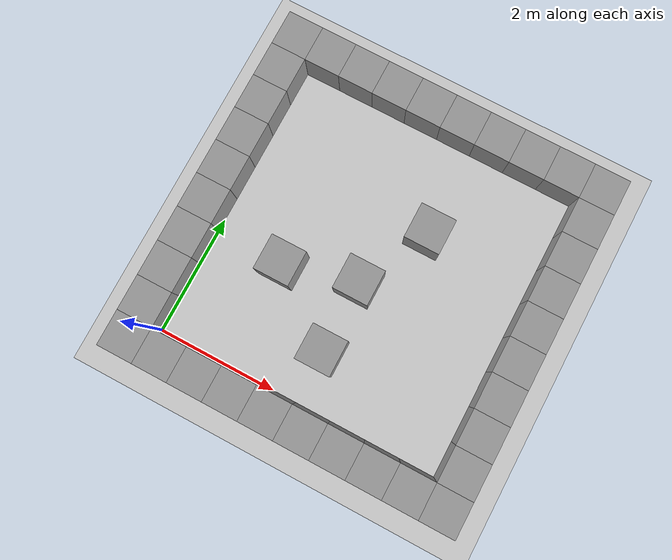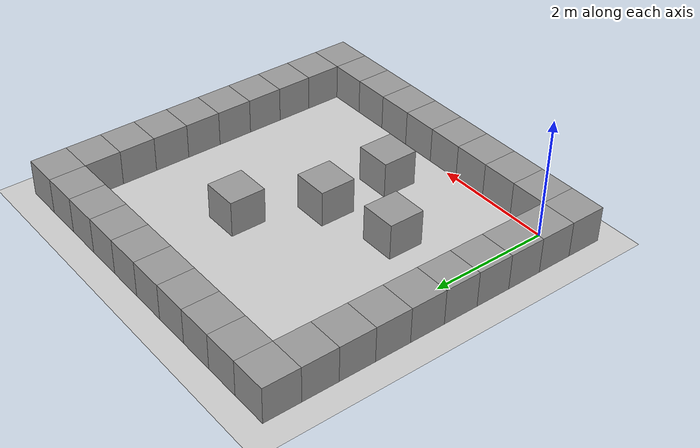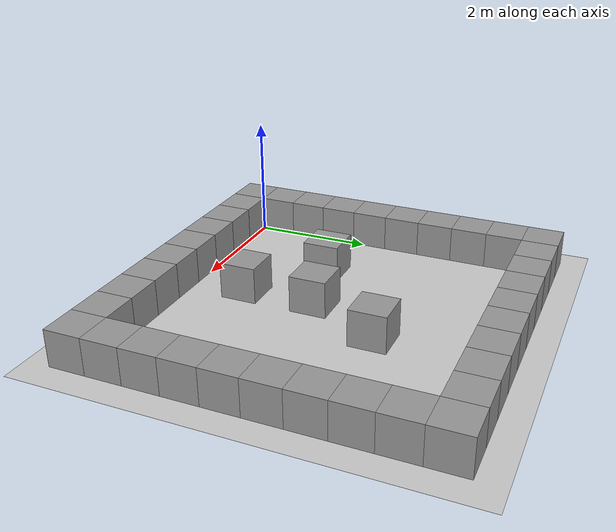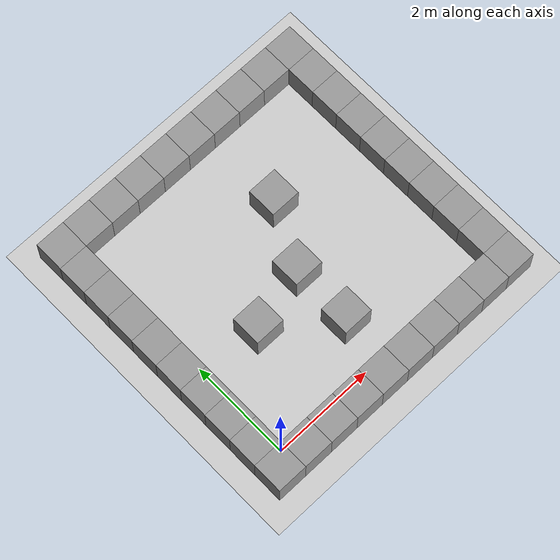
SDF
<sdf version="1.4">
 <world name="default">
  <scene><ambient>0.4 0.4 0.4 1</ambient><shadows>0</shadows></scene>
  <include><uri>model://ground_plane</uri></include>
  <include><uri>model://sun</uri></include>
  <model name="unit_box_id_0">
   <static>true</static>
   <pose>2.4 2.0999999999999996 0.3 0 0 0</pose>
   <link name="link">
    <inertial>
     <mass>1</mass>
     <inertia>
      <ixx>0.166667</ixx>
      <ixy>0</ixy>
      <ixz>0</ixz>
      <iyy>0.166667</iyy>
      <iyz>0</iyz>
      <izz>0.166667</izz>
     </inertia>
     <pose>2.4 2.0999999999999996 0.3 0 0 0</pose>
    </inertial>
    <collision name="collision"><geometry><box><size>0.6 0.6 0.6</size></box></geometry></collision>
    <visual name="visual">
     <geometry><box><size>0.6 0.6 0.6</size></box></geometry>
     <material>
      <script><name>Gazebo/Grey</name><uri>file://media/materials/scripts/gazebo.material</uri></script>
     </material>
    </visual>
   </link>
  </model>
  <model name="unit_box_id_1">
   <static>true</static>
   <pose>1.2 1.8 0.3 0 0 0</pose>
   <link name="link">
    <inertial>
     <mass>1</mass>
     <inertia>
      <ixx>0.166667</ixx>
      <ixy>0</ixy>
      <ixz>0</ixz>
      <iyy>0.166667</iyy>
      <iyz>0</iyz>
      <izz>0.166667</izz>
     </inertia>
     <pose>1.2 1.8 0.3 0 0 0</pose>
    </inertial>
    <collision name="collision"><geometry><box><size>0.6 0.6 0.6</size></box></geometry></collision>
    <visual name="visual">
     <geometry><box><size>0.6 0.6 0.6</size></box></geometry>
     <material>
      <script><name>Gazebo/Grey</name><uri>file://media/materials/scripts/gazebo.material</uri></script>
     </material>
    </visual>
   </link>
  </model>
  <model name="unit_box_id_2">
   <static>true</static>
   <pose>2.4 0.8999999999999999 0.3 0 0 0</pose>
   <link name="link">
    <inertial>
     <mass>1</mass>
     <inertia>
      <ixx>0.166667</ixx>
      <ixy>0</ixy>
      <ixz>0</ixz>
      <iyy>0.166667</iyy>
      <iyz>0</iyz>
      <izz>0.166667</izz>
     </inertia>
     <pose>2.4 0.8999999999999999 0.3 0 0 0</pose>
    </inertial>
    <collision name="collision"><geometry><box><size>0.6 0.6 0.6</size></box></geometry></collision>
    <visual name="visual">
     <geometry><box><size>0.6 0.6 0.6</size></box></geometry>
     <material>
      <script><name>Gazebo/Grey</name><uri>file://media/materials/scripts/gazebo.material</uri></script>
     </material>
    </visual>
   </link>
  </model>
  <model name="unit_box_id_3">
   <static>true</static>
   <pose>2.9999999999999996 3.3 0.3 0 0 0</pose>
   <link name="link">
    <inertial>
     <mass>1</mass>
     <inertia>
      <ixx>0.166667</ixx>
      <ixy>0</ixy>
      <ixz>0</ixz>
      <iyy>0.166667</iyy>
      <iyz>0</iyz>
      <izz>0.166667</izz>
     </inertia>
     <pose>2.9999999999999996 3.3 0.3 0 0 0</pose>
    </inertial>
    <collision name="collision"><geometry><box><size>0.6 0.6 0.6</size></box></geometry></collision>
    <visual name="visual">
     <geometry><box><size>0.6 0.6 0.6</size></box></geometry>
     <material>
      <script><name>Gazebo/Grey</name><uri>file://media/materials/scripts/gazebo.material</uri></script>
     </material>
    </visual>
   </link>
  </model>
  <model name="unit_box_id_-0.6_-0.6">
   <static>true</static>
   <pose>-0.3 -0.3 0.3 0 0 0</pose>
   <link name="link">
    <inertial>
     <mass>1</mass>
     <inertia>
      <ixx>0.166667</ixx>
      <ixy>0</ixy>
      <ixz>0</ixz>
      <iyy>0.166667</iyy>
      <iyz>0</iyz>
      <izz>0.166667</izz>
     </inertia>
     <pose>-0.3 -0.3 0.3 0 0 0</pose>
    </inertial>
    <collision name="collision"><geometry><box><size>0.6 0.6 0.6</size></box></geometry></collision>
    <visual name="visual">
     <geometry><box><size>0.6 0.6 0.6</size></box></geometry>
     <material>
      <script><name>Gazebo/Grey</name><uri>file://media/materials/scripts/gazebo.material</uri></script>
     </material>
    </visual>
   </link>
  </model>
  <model name="unit_box_id_4.8_-0.6">
   <static>true</static>
   <pose>5.1 -0.3 0.3 0 0 0</pose>
   <link name="link">
    <inertial>
     <mass>1</mass>
     <inertia>
      <ixx>0.166667</ixx>
      <ixy>0</ixy>
      <ixz>0</ixz>
      <iyy>0.166667</iyy>
      <iyz>0</iyz>
      <izz>0.166667</izz>
     </inertia>
     <pose>5.1 -0.3 0.3 0 0 0</pose>
    </inertial>
    <collision name="collision"><geometry><box><size>0.6 0.6 0.6</size></box></geometry></collision>
    <visual name="visual">
     <geometry><box><size>0.6 0.6 0.6</size></box></geometry>
     <material>
      <script><name>Gazebo/Grey</name><uri>file://media/materials/scripts/gazebo.material</uri></script>
     </material>
    </visual>
   </link>
  </model>
  <model name="unit_box_id_-0.6_0.0">
   <static>true</static>
   <pose>-0.3 0.3 0.3 0 0 0</pose>
   <link name="link">
    <inertial>
     <mass>1</mass>
     <inertia>
      <ixx>0.166667</ixx>
      <ixy>0</ixy>
      <ixz>0</ixz>
      <iyy>0.166667</iyy>
      <iyz>0</iyz>
      <izz>0.166667</izz>
     </inertia>
     <pose>-0.3 0.3 0.3 0 0 0</pose>
    </inertial>
    <collision name="collision"><geometry><box><size>0.6 0.6 0.6</size></box></geometry></collision>
    <visual name="visual">
     <geometry><box><size>0.6 0.6 0.6</size></box></geometry>
     <material>
      <script><name>Gazebo/Grey</name><uri>file://media/materials/scripts/gazebo.material</uri></script>
     </material>
    </visual>
   </link>
  </model>
  <model name="unit_box_id_4.8_0.0">
   <static>true</static>
   <pose>5.1 0.3 0.3 0 0 0</pose>
   <link name="link">
    <inertial>
     <mass>1</mass>
     <inertia>
      <ixx>0.166667</ixx>
      <ixy>0</ixy>
      <ixz>0</ixz>
      <iyy>0.166667</iyy>
      <iyz>0</iyz>
      <izz>0.166667</izz>
     </inertia>
     <pose>5.1 0.3 0.3 0 0 0</pose>
    </inertial>
    <collision name="collision"><geometry><box><size>0.6 0.6 0.6</size></box></geometry></collision>
    <visual name="visual">
     <geometry><box><size>0.6 0.6 0.6</size></box></geometry>
     <material>
      <script><name>Gazebo/Grey</name><uri>file://media/materials/scripts/gazebo.material</uri></script>
     </material>
    </visual>
   </link>
  </model>
  <model name="unit_box_id_-0.6_0.6">
   <static>true</static>
   <pose>-0.3 0.8999999999999999 0.3 0 0 0</pose>
   <link name="link">
    <inertial>
     <mass>1</mass>
     <inertia>
      <ixx>0.166667</ixx>
      <ixy>0</ixy>
      <ixz>0</ixz>
      <iyy>0.166667</iyy>
      <iyz>0</iyz>
      <izz>0.166667</izz>
     </inertia>
     <pose>-0.3 0.8999999999999999 0.3 0 0 0</pose>
    </inertial>
    <collision name="collision"><geometry><box><size>0.6 0.6 0.6</size></box></geometry></collision>
    <visual name="visual">
     <geometry><box><size>0.6 0.6 0.6</size></box></geometry>
     <material>
      <script><name>Gazebo/Grey</name><uri>file://media/materials/scripts/gazebo.material</uri></script>
     </material>
    </visual>
   </link>
  </model>
  <model name="unit_box_id_4.8_0.6">
   <static>true</static>
   <pose>5.1 0.8999999999999999 0.3 0 0 0</pose>
   <link name="link">
    <inertial>
     <mass>1</mass>
     <inertia>
      <ixx>0.166667</ixx>
      <ixy>0</ixy>
      <ixz>0</ixz>
      <iyy>0.166667</iyy>
      <iyz>0</iyz>
      <izz>0.166667</izz>
     </inertia>
     <pose>5.1 0.8999999999999999 0.3 0 0 0</pose>
    </inertial>
    <collision name="collision"><geometry><box><size>0.6 0.6 0.6</size></box></geometry></collision>
    <visual name="visual">
     <geometry><box><size>0.6 0.6 0.6</size></box></geometry>
     <material>
      <script><name>Gazebo/Grey</name><uri>file://media/materials/scripts/gazebo.material</uri></script>
     </material>
    </visual>
   </link>
  </model>
  <model name="unit_box_id_-0.6_1.2">
   <static>true</static>
   <pose>-0.3 1.5 0.3 0 0 0</pose>
   <link name="link">
    <inertial>
     <mass>1</mass>
     <inertia>
      <ixx>0.166667</ixx>
      <ixy>0</ixy>
      <ixz>0</ixz>
      <iyy>0.166667</iyy>
      <iyz>0</iyz>
      <izz>0.166667</izz>
     </inertia>
     <pose>-0.3 1.5 0.3 0 0 0</pose>
    </inertial>
    <collision name="collision"><geometry><box><size>0.6 0.6 0.6</size></box></geometry></collision>
    <visual name="visual">
     <geometry><box><size>0.6 0.6 0.6</size></box></geometry>
     <material>
      <script><name>Gazebo/Grey</name><uri>file://media/materials/scripts/gazebo.material</uri></script>
     </material>
    </visual>
   </link>
  </model>
  <model name="unit_box_id_4.8_1.2">
   <static>true</static>
   <pose>5.1 1.5 0.3 0 0 0</pose>
   <link name="link">
    <inertial>
     <mass>1</mass>
     <inertia>
      <ixx>0.166667</ixx>
      <ixy>0</ixy>
      <ixz>0</ixz>
      <iyy>0.166667</iyy>
      <iyz>0</iyz>
      <izz>0.166667</izz>
     </inertia>
     <pose>5.1 1.5 0.3 0 0 0</pose>
    </inertial>
    <collision name="collision"><geometry><box><size>0.6 0.6 0.6</size></box></geometry></collision>
    <visual name="visual">
     <geometry><box><size>0.6 0.6 0.6</size></box></geometry>
     <material>
      <script><name>Gazebo/Grey</name><uri>file://media/materials/scripts/gazebo.material</uri></script>
     </material>
    </visual>
   </link>
  </model>
  <model name="unit_box_id_-0.6_1.7999999999999998">
   <static>true</static>
   <pose>-0.3 2.0999999999999996 0.3 0 0 0</pose>
   <link name="link">
    <inertial>
     <mass>1</mass>
     <inertia>
      <ixx>0.166667</ixx>
      <ixy>0</ixy>
      <ixz>0</ixz>
      <iyy>0.166667</iyy>
      <iyz>0</iyz>
      <izz>0.166667</izz>
     </inertia>
     <pose>-0.3 2.0999999999999996 0.3 0 0 0</pose>
    </inertial>
    <collision name="collision"><geometry><box><size>0.6 0.6 0.6</size></box></geometry></collision>
    <visual name="visual">
     <geometry><box><size>0.6 0.6 0.6</size></box></geometry>
     <material>
      <script><name>Gazebo/Grey</name><uri>file://media/materials/scripts/gazebo.material</uri></script>
     </material>
    </visual>
   </link>
  </model>
  <model name="unit_box_id_4.8_1.7999999999999998">
   <static>true</static>
   <pose>5.1 2.0999999999999996 0.3 0 0 0</pose>
   <link name="link">
    <inertial>
     <mass>1</mass>
     <inertia>
      <ixx>0.166667</ixx>
      <ixy>0</ixy>
      <ixz>0</ixz>
      <iyy>0.166667</iyy>
      <iyz>0</iyz>
      <izz>0.166667</izz>
     </inertia>
     <pose>5.1 2.0999999999999996 0.3 0 0 0</pose>
    </inertial>
    <collision name="collision"><geometry><box><size>0.6 0.6 0.6</size></box></geometry></collision>
    <visual name="visual">
     <geometry><box><size>0.6 0.6 0.6</size></box></geometry>
     <material>
      <script><name>Gazebo/Grey</name><uri>file://media/materials/scripts/gazebo.material</uri></script>
     </material>
    </visual>
   </link>
  </model>
  <model name="unit_box_id_-0.6_2.4">
   <static>true</static>
   <pose>-0.3 2.6999999999999997 0.3 0 0 0</pose>
   <link name="link">
    <inertial>
     <mass>1</mass>
     <inertia>
      <ixx>0.166667</ixx>
      <ixy>0</ixy>
      <ixz>0</ixz>
      <iyy>0.166667</iyy>
      <iyz>0</iyz>
      <izz>0.166667</izz>
     </inertia>
     <pose>-0.3 2.6999999999999997 0.3 0 0 0</pose>
    </inertial>
    <collision name="collision"><geometry><box><size>0.6 0.6 0.6</size></box></geometry></collision>
    <visual name="visual">
     <geometry><box><size>0.6 0.6 0.6</size></box></geometry>
     <material>
      <script><name>Gazebo/Grey</name><uri>file://media/materials/scripts/gazebo.material</uri></script>
     </material>
    </visual>
   </link>
  </model>
  <model name="unit_box_id_4.8_2.4">
   <static>true</static>
   <pose>5.1 2.6999999999999997 0.3 0 0 0</pose>
   <link name="link">
    <inertial>
     <mass>1</mass>
     <inertia>
      <ixx>0.166667</ixx>
      <ixy>0</ixy>
      <ixz>0</ixz>
      <iyy>0.166667</iyy>
      <iyz>0</iyz>
      <izz>0.166667</izz>
     </inertia>
     <pose>5.1 2.6999999999999997 0.3 0 0 0</pose>
    </inertial>
    <collision name="collision"><geometry><box><size>0.6 0.6 0.6</size></box></geometry></collision>
    <visual name="visual">
     <geometry><box><size>0.6 0.6 0.6</size></box></geometry>
     <material>
      <script><name>Gazebo/Grey</name><uri>file://media/materials/scripts/gazebo.material</uri></script>
     </material>
    </visual>
   </link>
  </model>
  <model name="unit_box_id_-0.6_3.0">
   <static>true</static>
   <pose>-0.3 3.3 0.3 0 0 0</pose>
   <link name="link">
    <inertial>
     <mass>1</mass>
     <inertia>
      <ixx>0.166667</ixx>
      <ixy>0</ixy>
      <ixz>0</ixz>
      <iyy>0.166667</iyy>
      <iyz>0</iyz>
      <izz>0.166667</izz>
     </inertia>
     <pose>-0.3 3.3 0.3 0 0 0</pose>
    </inertial>
    <collision name="collision"><geometry><box><size>0.6 0.6 0.6</size></box></geometry></collision>
    <visual name="visual">
     <geometry><box><size>0.6 0.6 0.6</size></box></geometry>
     <material>
      <script><name>Gazebo/Grey</name><uri>file://media/materials/scripts/gazebo.material</uri></script>
     </material>
    </visual>
   </link>
  </model>
  <model name="unit_box_id_4.8_3.0">
   <static>true</static>
   <pose>5.1 3.3 0.3 0 0 0</pose>
   <link name="link">
    <inertial>
     <mass>1</mass>
     <inertia>
      <ixx>0.166667</ixx>
      <ixy>0</ixy>
      <ixz>0</ixz>
      <iyy>0.166667</iyy>
      <iyz>0</iyz>
      <izz>0.166667</izz>
     </inertia>
     <pose>5.1 3.3 0.3 0 0 0</pose>
    </inertial>
    <collision name="collision"><geometry><box><size>0.6 0.6 0.6</size></box></geometry></collision>
    <visual name="visual">
     <geometry><box><size>0.6 0.6 0.6</size></box></geometry>
     <material>
      <script><name>Gazebo/Grey</name><uri>file://media/materials/scripts/gazebo.material</uri></script>
     </material>
    </visual>
   </link>
  </model>
  <model name="unit_box_id_-0.6_3.5999999999999996">
   <static>true</static>
   <pose>-0.3 3.8999999999999995 0.3 0 0 0</pose>
   <link name="link">
    <inertial>
     <mass>1</mass>
     <inertia>
      <ixx>0.166667</ixx>
      <ixy>0</ixy>
      <ixz>0</ixz>
      <iyy>0.166667</iyy>
      <iyz>0</iyz>
      <izz>0.166667</izz>
     </inertia>
     <pose>-0.3 3.8999999999999995 0.3 0 0 0</pose>
    </inertial>
    <collision name="collision"><geometry><box><size>0.6 0.6 0.6</size></box></geometry></collision>
    <visual name="visual">
     <geometry><box><size>0.6 0.6 0.6</size></box></geometry>
     <material>
      <script><name>Gazebo/Grey</name><uri>file://media/materials/scripts/gazebo.material</uri></script>
     </material>
    </visual>
   </link>
  </model>
  <model name="unit_box_id_4.8_3.5999999999999996">
   <static>true</static>
   <pose>5.1 3.8999999999999995 0.3 0 0 0</pose>
   <link name="link">
    <inertial>
     <mass>1</mass>
     <inertia>
      <ixx>0.166667</ixx>
      <ixy>0</ixy>
      <ixz>0</ixz>
      <iyy>0.166667</iyy>
      <iyz>0</iyz>
      <izz>0.166667</izz>
     </inertia>
     <pose>5.1 3.8999999999999995 0.3 0 0 0</pose>
    </inertial>
    <collision name="collision"><geometry><box><size>0.6 0.6 0.6</size></box></geometry></collision>
    <visual name="visual">
     <geometry><box><size>0.6 0.6 0.6</size></box></geometry>
     <material>
      <script><name>Gazebo/Grey</name><uri>file://media/materials/scripts/gazebo.material</uri></script>
     </material>
    </visual>
   </link>
  </model>
  <model name="unit_box_id_-0.6_4.2">
   <static>true</static>
   <pose>-0.3 4.5 0.3 0 0 0</pose>
   <link name="link">
    <inertial>
     <mass>1</mass>
     <inertia>
      <ixx>0.166667</ixx>
      <ixy>0</ixy>
      <ixz>0</ixz>
      <iyy>0.166667</iyy>
      <iyz>0</iyz>
      <izz>0.166667</izz>
     </inertia>
     <pose>-0.3 4.5 0.3 0 0 0</pose>
    </inertial>
    <collision name="collision"><geometry><box><size>0.6 0.6 0.6</size></box></geometry></collision>
    <visual name="visual">
     <geometry><box><size>0.6 0.6 0.6</size></box></geometry>
     <material>
      <script><name>Gazebo/Grey</name><uri>file://media/materials/scripts/gazebo.material</uri></script>
     </material>
    </visual>
   </link>
  </model>
  <model name="unit_box_id_4.8_4.2">
   <static>true</static>
   <pose>5.1 4.5 0.3 0 0 0</pose>
   <link name="link">
    <inertial>
     <mass>1</mass>
     <inertia>
      <ixx>0.166667</ixx>
      <ixy>0</ixy>
      <ixz>0</ixz>
      <iyy>0.166667</iyy>
      <iyz>0</iyz>
      <izz>0.166667</izz>
     </inertia>
     <pose>5.1 4.5 0.3 0 0 0</pose>
    </inertial>
    <collision name="collision"><geometry><box><size>0.6 0.6 0.6</size></box></geometry></collision>
    <visual name="visual">
     <geometry><box><size>0.6 0.6 0.6</size></box></geometry>
     <material>
      <script><name>Gazebo/Grey</name><uri>file://media/materials/scripts/gazebo.material</uri></script>
     </material>
    </visual>
   </link>
  </model>
  <model name="unit_box_id_-0.6_4.8">
   <static>true</static>
   <pose>-0.3 5.1 0.3 0 0 0</pose>
   <link name="link">
    <inertial>
     <mass>1</mass>
     <inertia>
      <ixx>0.166667</ixx>
      <ixy>0</ixy>
      <ixz>0</ixz>
      <iyy>0.166667</iyy>
      <iyz>0</iyz>
      <izz>0.166667</izz>
     </inertia>
     <pose>-0.3 5.1 0.3 0 0 0</pose>
    </inertial>
    <collision name="collision"><geometry><box><size>0.6 0.6 0.6</size></box></geometry></collision>
    <visual name="visual">
     <geometry><box><size>0.6 0.6 0.6</size></box></geometry>
     <material>
      <script><name>Gazebo/Grey</name><uri>file://media/materials/scripts/gazebo.material</uri></script>
     </material>
    </visual>
   </link>
  </model>
  <model name="unit_box_id_4.8_4.8">
   <static>true</static>
   <pose>5.1 5.1 0.3 0 0 0</pose>
   <link name="link">
    <inertial>
     <mass>1</mass>
     <inertia>
      <ixx>0.166667</ixx>
      <ixy>0</ixy>
      <ixz>0</ixz>
      <iyy>0.166667</iyy>
      <iyz>0</iyz>
      <izz>0.166667</izz>
     </inertia>
     <pose>5.1 5.1 0.3 0 0 0</pose>
    </inertial>
    <collision name="collision"><geometry><box><size>0.6 0.6 0.6</size></box></geometry></collision>
    <visual name="visual">
     <geometry><box><size>0.6 0.6 0.6</size></box></geometry>
     <material>
      <script><name>Gazebo/Grey</name><uri>file://media/materials/scripts/gazebo.material</uri></script>
     </material>
    </visual>
   </link>
  </model>
  <model name="unit_box_id_-0.6_-0.6">
   <static>true</static>
   <pose>-0.3 -0.3 0.3 0 0 0</pose>
   <link name="link">
    <inertial>
     <mass>1</mass>
     <inertia>
      <ixx>0.166667</ixx>
      <ixy>0</ixy>
      <ixz>0</ixz>
      <iyy>0.166667</iyy>
      <iyz>0</iyz>
      <izz>0.166667</izz>
     </inertia>
     <pose>-0.3 -0.3 0.3 0 0 0</pose>
    </inertial>
    <collision name="collision"><geometry><box><size>0.6 0.6 0.6</size></box></geometry></collision>
    <visual name="visual">
     <geometry><box><size>0.6 0.6 0.6</size></box></geometry>
     <material>
      <script><name>Gazebo/Grey</name><uri>file://media/materials/scripts/gazebo.material</uri></script>
     </material>
    </visual>
   </link>
  </model>
  <model name="unit_box_id_-0.6_4.8">
   <static>true</static>
   <pose>-0.3 5.1 0.3 0 0 0</pose>
   <link name="link">
    <inertial>
     <mass>1</mass>
     <inertia>
      <ixx>0.166667</ixx>
      <ixy>0</ixy>
      <ixz>0</ixz>
      <iyy>0.166667</iyy>
      <iyz>0</iyz>
      <izz>0.166667</izz>
     </inertia>
     <pose>-0.3 5.1 0.3 0 0 0</pose>
    </inertial>
    <collision name="collision"><geometry><box><size>0.6 0.6 0.6</size></box></geometry></collision>
    <visual name="visual">
     <geometry><box><size>0.6 0.6 0.6</size></box></geometry>
     <material>
      <script><name>Gazebo/Grey</name><uri>file://media/materials/scripts/gazebo.material</uri></script>
     </material>
    </visual>
   </link>
  </model>
  <model name="unit_box_id_0.0_-0.6">
   <static>true</static>
   <pose>0.3 -0.3 0.3 0 0 0</pose>
   <link name="link">
    <inertial>
     <mass>1</mass>
     <inertia>
      <ixx>0.166667</ixx>
      <ixy>0</ixy>
      <ixz>0</ixz>
      <iyy>0.166667</iyy>
      <iyz>0</iyz>
      <izz>0.166667</izz>
     </inertia>
     <pose>0.3 -0.3 0.3 0 0 0</pose>
    </inertial>
    <collision name="collision"><geometry><box><size>0.6 0.6 0.6</size></box></geometry></collision>
    <visual name="visual">
     <geometry><box><size>0.6 0.6 0.6</size></box></geometry>
     <material>
      <script><name>Gazebo/Grey</name><uri>file://media/materials/scripts/gazebo.material</uri></script>
     </material>
    </visual>
   </link>
  </model>
  <model name="unit_box_id_0.0_4.8">
   <static>true</static>
   <pose>0.3 5.1 0.3 0 0 0</pose>
   <link name="link">
    <inertial>
     <mass>1</mass>
     <inertia>
      <ixx>0.166667</ixx>
      <ixy>0</ixy>
      <ixz>0</ixz>
      <iyy>0.166667</iyy>
      <iyz>0</iyz>
      <izz>0.166667</izz>
     </inertia>
     <pose>0.3 5.1 0.3 0 0 0</pose>
    </inertial>
    <collision name="collision"><geometry><box><size>0.6 0.6 0.6</size></box></geometry></collision>
    <visual name="visual">
     <geometry><box><size>0.6 0.6 0.6</size></box></geometry>
     <material>
      <script><name>Gazebo/Grey</name><uri>file://media/materials/scripts/gazebo.material</uri></script>
     </material>
    </visual>
   </link>
  </model>
  <model name="unit_box_id_0.6_-0.6">
   <static>true</static>
   <pose>0.8999999999999999 -0.3 0.3 0 0 0</pose>
   <link name="link">
    <inertial>
     <mass>1</mass>
     <inertia>
      <ixx>0.166667</ixx>
      <ixy>0</ixy>
      <ixz>0</ixz>
      <iyy>0.166667</iyy>
      <iyz>0</iyz>
      <izz>0.166667</izz>
     </inertia>
     <pose>0.8999999999999999 -0.3 0.3 0 0 0</pose>
    </inertial>
    <collision name="collision"><geometry><box><size>0.6 0.6 0.6</size></box></geometry></collision>
    <visual name="visual">
     <geometry><box><size>0.6 0.6 0.6</size></box></geometry>
     <material>
      <script><name>Gazebo/Grey</name><uri>file://media/materials/scripts/gazebo.material</uri></script>
     </material>
    </visual>
   </link>
  </model>
  <model name="unit_box_id_0.6_4.8">
   <static>true</static>
   <pose>0.8999999999999999 5.1 0.3 0 0 0</pose>
   <link name="link">
    <inertial>
     <mass>1</mass>
     <inertia>
      <ixx>0.166667</ixx>
      <ixy>0</ixy>
      <ixz>0</ixz>
      <iyy>0.166667</iyy>
      <iyz>0</iyz>
      <izz>0.166667</izz>
     </inertia>
     <pose>0.8999999999999999 5.1 0.3 0 0 0</pose>
    </inertial>
    <collision name="collision"><geometry><box><size>0.6 0.6 0.6</size></box></geometry></collision>
    <visual name="visual">
     <geometry><box><size>0.6 0.6 0.6</size></box></geometry>
     <material>
      <script><name>Gazebo/Grey</name><uri>file://media/materials/scripts/gazebo.material</uri></script>
     </material>
    </visual>
   </link>
  </model>
  <model name="unit_box_id_1.2_-0.6">
   <static>true</static>
   <pose>1.5 -0.3 0.3 0 0 0</pose>
   <link name="link">
    <inertial>
     <mass>1</mass>
     <inertia>
      <ixx>0.166667</ixx>
      <ixy>0</ixy>
      <ixz>0</ixz>
      <iyy>0.166667</iyy>
      <iyz>0</iyz>
      <izz>0.166667</izz>
     </inertia>
     <pose>1.5 -0.3 0.3 0 0 0</pose>
    </inertial>
    <collision name="collision"><geometry><box><size>0.6 0.6 0.6</size></box></geometry></collision>
    <visual name="visual">
     <geometry><box><size>0.6 0.6 0.6</size></box></geometry>
     <material>
      <script><name>Gazebo/Grey</name><uri>file://media/materials/scripts/gazebo.material</uri></script>
     </material>
    </visual>
   </link>
  </model>
  <model name="unit_box_id_1.2_4.8">
   <static>true</static>
   <pose>1.5 5.1 0.3 0 0 0</pose>
   <link name="link">
    <inertial>
     <mass>1</mass>
     <inertia>
      <ixx>0.166667</ixx>
      <ixy>0</ixy>
      <ixz>0</ixz>
      <iyy>0.166667</iyy>
      <iyz>0</iyz>
      <izz>0.166667</izz>
     </inertia>
     <pose>1.5 5.1 0.3 0 0 0</pose>
    </inertial>
    <collision name="collision"><geometry><box><size>0.6 0.6 0.6</size></box></geometry></collision>
    <visual name="visual">
     <geometry><box><size>0.6 0.6 0.6</size></box></geometry>
     <material>
      <script><name>Gazebo/Grey</name><uri>file://media/materials/scripts/gazebo.material</uri></script>
     </material>
    </visual>
   </link>
  </model>
  <model name="unit_box_id_1.7999999999999998_-0.6">
   <static>true</static>
   <pose>2.0999999999999996 -0.3 0.3 0 0 0</pose>
   <link name="link">
    <inertial>
     <mass>1</mass>
     <inertia>
      <ixx>0.166667</ixx>
      <ixy>0</ixy>
      <ixz>0</ixz>
      <iyy>0.166667</iyy>
      <iyz>0</iyz>
      <izz>0.166667</izz>
     </inertia>
     <pose>2.0999999999999996 -0.3 0.3 0 0 0</pose>
    </inertial>
    <collision name="collision"><geometry><box><size>0.6 0.6 0.6</size></box></geometry></collision>
    <visual name="visual">
     <geometry><box><size>0.6 0.6 0.6</size></box></geometry>
     <material>
      <script><name>Gazebo/Grey</name><uri>file://media/materials/scripts/gazebo.material</uri></script>
     </material>
    </visual>
   </link>
  </model>
  <model name="unit_box_id_1.7999999999999998_4.8">
   <static>true</static>
   <pose>2.0999999999999996 5.1 0.3 0 0 0</pose>
   <link name="link">
    <inertial>
     <mass>1</mass>
     <inertia>
      <ixx>0.166667</ixx>
      <ixy>0</ixy>
      <ixz>0</ixz>
      <iyy>0.166667</iyy>
      <iyz>0</iyz>
      <izz>0.166667</izz>
     </inertia>
     <pose>2.0999999999999996 5.1 0.3 0 0 0</pose>
    </inertial>
    <collision name="collision"><geometry><box><size>0.6 0.6 0.6</size></box></geometry></collision>
    <visual name="visual">
     <geometry><box><size>0.6 0.6 0.6</size></box></geometry>
     <material>
      <script><name>Gazebo/Grey</name><uri>file://media/materials/scripts/gazebo.material</uri></script>
     </material>
    </visual>
   </link>
  </model>
  <model name="unit_box_id_2.4_-0.6">
   <static>true</static>
   <pose>2.6999999999999997 -0.3 0.3 0 0 0</pose>
   <link name="link">
    <inertial>
     <mass>1</mass>
     <inertia>
      <ixx>0.166667</ixx>
      <ixy>0</ixy>
      <ixz>0</ixz>
      <iyy>0.166667</iyy>
      <iyz>0</iyz>
      <izz>0.166667</izz>
     </inertia>
     <pose>2.6999999999999997 -0.3 0.3 0 0 0</pose>
    </inertial>
    <collision name="collision"><geometry><box><size>0.6 0.6 0.6</size></box></geometry></collision>
    <visual name="visual">
     <geometry><box><size>0.6 0.6 0.6</size></box></geometry>
     <material>
      <script><name>Gazebo/Grey</name><uri>file://media/materials/scripts/gazebo.material</uri></script>
     </material>
    </visual>
   </link>
  </model>
  <model name="unit_box_id_2.4_4.8">
   <static>true</static>
   <pose>2.6999999999999997 5.1 0.3 0 0 0</pose>
   <link name="link">
    <inertial>
     <mass>1</mass>
     <inertia>
      <ixx>0.166667</ixx>
      <ixy>0</ixy>
      <ixz>0</ixz>
      <iyy>0.166667</iyy>
      <iyz>0</iyz>
      <izz>0.166667</izz>
     </inertia>
     <pose>2.6999999999999997 5.1 0.3 0 0 0</pose>
    </inertial>
    <collision name="collision"><geometry><box><size>0.6 0.6 0.6</size></box></geometry></collision>
    <visual name="visual">
     <geometry><box><size>0.6 0.6 0.6</size></box></geometry>
     <material>
      <script><name>Gazebo/Grey</name><uri>file://media/materials/scripts/gazebo.material</uri></script>
     </material>
    </visual>
   </link>
  </model>
  <model name="unit_box_id_3.0_-0.6">
   <static>true</static>
   <pose>3.3 -0.3 0.3 0 0 0</pose>
   <link name="link">
    <inertial>
     <mass>1</mass>
     <inertia>
      <ixx>0.166667</ixx>
      <ixy>0</ixy>
      <ixz>0</ixz>
      <iyy>0.166667</iyy>
      <iyz>0</iyz>
      <izz>0.166667</izz>
     </inertia>
     <pose>3.3 -0.3 0.3 0 0 0</pose>
    </inertial>
    <collision name="collision"><geometry><box><size>0.6 0.6 0.6</size></box></geometry></collision>
    <visual name="visual">
     <geometry><box><size>0.6 0.6 0.6</size></box></geometry>
     <material>
      <script><name>Gazebo/Grey</name><uri>file://media/materials/scripts/gazebo.material</uri></script>
     </material>
    </visual>
   </link>
  </model>
  <model name="unit_box_id_3.0_4.8">
   <static>true</static>
   <pose>3.3 5.1 0.3 0 0 0</pose>
   <link name="link">
    <inertial>
     <mass>1</mass>
     <inertia>
      <ixx>0.166667</ixx>
      <ixy>0</ixy>
      <ixz>0</ixz>
      <iyy>0.166667</iyy>
      <iyz>0</iyz>
      <izz>0.166667</izz>
     </inertia>
     <pose>3.3 5.1 0.3 0 0 0</pose>
    </inertial>
    <collision name="collision"><geometry><box><size>0.6 0.6 0.6</size></box></geometry></collision>
    <visual name="visual">
     <geometry><box><size>0.6 0.6 0.6</size></box></geometry>
     <material>
      <script><name>Gazebo/Grey</name><uri>file://media/materials/scripts/gazebo.material</uri></script>
     </material>
    </visual>
   </link>
  </model>
  <model name="unit_box_id_3.5999999999999996_-0.6">
   <static>true</static>
   <pose>3.8999999999999995 -0.3 0.3 0 0 0</pose>
   <link name="link">
    <inertial>
     <mass>1</mass>
     <inertia>
      <ixx>0.166667</ixx>
      <ixy>0</ixy>
      <ixz>0</ixz>
      <iyy>0.166667</iyy>
      <iyz>0</iyz>
      <izz>0.166667</izz>
     </inertia>
     <pose>3.8999999999999995 -0.3 0.3 0 0 0</pose>
    </inertial>
    <collision name="collision"><geometry><box><size>0.6 0.6 0.6</size></box></geometry></collision>
    <visual name="visual">
     <geometry><box><size>0.6 0.6 0.6</size></box></geometry>
     <material>
      <script><name>Gazebo/Grey</name><uri>file://media/materials/scripts/gazebo.material</uri></script>
     </material>
    </visual>
   </link>
  </model>
  <model name="unit_box_id_3.5999999999999996_4.8">
   <static>true</static>
   <pose>3.8999999999999995 5.1 0.3 0 0 0</pose>
   <link name="link">
    <inertial>
     <mass>1</mass>
     <inertia>
      <ixx>0.166667</ixx>
      <ixy>0</ixy>
      <ixz>0</ixz>
      <iyy>0.166667</iyy>
      <iyz>0</iyz>
      <izz>0.166667</izz>
     </inertia>
     <pose>3.8999999999999995 5.1 0.3 0 0 0</pose>
    </inertial>
    <collision name="collision"><geometry><box><size>0.6 0.6 0.6</size></box></geometry></collision>
    <visual name="visual">
     <geometry><box><size>0.6 0.6 0.6</size></box></geometry>
     <material>
      <script><name>Gazebo/Grey</name><uri>file://media/materials/scripts/gazebo.material</uri></script>
     </material>
    </visual>
   </link>
  </model>
  <model name="unit_box_id_4.2_-0.6">
   <static>true</static>
   <pose>4.5 -0.3 0.3 0 0 0</pose>
   <link name="link">
    <inertial>
     <mass>1</mass>
     <inertia>
      <ixx>0.166667</ixx>
      <ixy>0</ixy>
      <ixz>0</ixz>
      <iyy>0.166667</iyy>
      <iyz>0</iyz>
      <izz>0.166667</izz>
     </inertia>
     <pose>4.5 -0.3 0.3 0 0 0</pose>
    </inertial>
    <collision name="collision"><geometry><box><size>0.6 0.6 0.6</size></box></geometry></collision>
    <visual name="visual">
     <geometry><box><size>0.6 0.6 0.6</size></box></geometry>
     <material>
      <script><name>Gazebo/Grey</name><uri>file://media/materials/scripts/gazebo.material</uri></script>
     </material>
    </visual>
   </link>
  </model>
  <model name="unit_box_id_4.2_4.8">
   <static>true</static>
   <pose>4.5 5.1 0.3 0 0 0</pose>
   <link name="link">
    <inertial>
     <mass>1</mass>
     <inertia>
      <ixx>0.166667</ixx>
      <ixy>0</ixy>
      <ixz>0</ixz>
      <iyy>0.166667</iyy>
      <iyz>0</iyz>
      <izz>0.166667</izz>
     </inertia>
     <pose>4.5 5.1 0.3 0 0 0</pose>
    </inertial>
    <collision name="collision"><geometry><box><size>0.6 0.6 0.6</size></box></geometry></collision>
    <visual name="visual">
     <geometry><box><size>0.6 0.6 0.6</size></box></geometry>
     <material>
      <script><name>Gazebo/Grey</name><uri>file://media/materials/scripts/gazebo.material</uri></script>
     </material>
    </visual>
   </link>
  </model>
  <model name="unit_box_id_4.8_-0.6">
   <static>true</static>
   <pose>5.1 -0.3 0.3 0 0 0</pose>
   <link name="link">
    <inertial>
     <mass>1</mass>
     <inertia>
      <ixx>0.166667</ixx>
      <ixy>0</ixy>
      <ixz>0</ixz>
      <iyy>0.166667</iyy>
      <iyz>0</iyz>
      <izz>0.166667</izz>
     </inertia>
     <pose>5.1 -0.3 0.3 0 0 0</pose>
    </inertial>
    <collision name="collision"><geometry><box><size>0.6 0.6 0.6</size></box></geometry></collision>
    <visual name="visual">
     <geometry><box><size>0.6 0.6 0.6</size></box></geometry>
     <material>
      <script><name>Gazebo/Grey</name><uri>file://media/materials/scripts/gazebo.material</uri></script>
     </material>
    </visual>
   </link>
  </model>
  <model name="unit_box_id_4.8_4.8">
   <static>true</static>
   <pose>5.1 5.1 0.3 0 0 0</pose>
   <link name="link">
    <inertial>
     <mass>1</mass>
     <inertia>
      <ixx>0.166667</ixx>
      <ixy>0</ixy>
      <ixz>0</ixz>
      <iyy>0.166667</iyy>
      <iyz>0</iyz>
      <izz>0.166667</izz>
     </inertia>
     <pose>5.1 5.1 0.3 0 0 0</pose>
    </inertial>
    <collision name="collision"><geometry><box><size>0.6 0.6 0.6</size></box></geometry></collision>
    <visual name="visual">
     <geometry><box><size>0.6 0.6 0.6</size></box></geometry>
     <material>
      <script><name>Gazebo/Grey</name><uri>file://media/materials/scripts/gazebo.material</uri></script>
     </material>
    </visual>
   </link>
  </model>
 </world>
</sdf>
